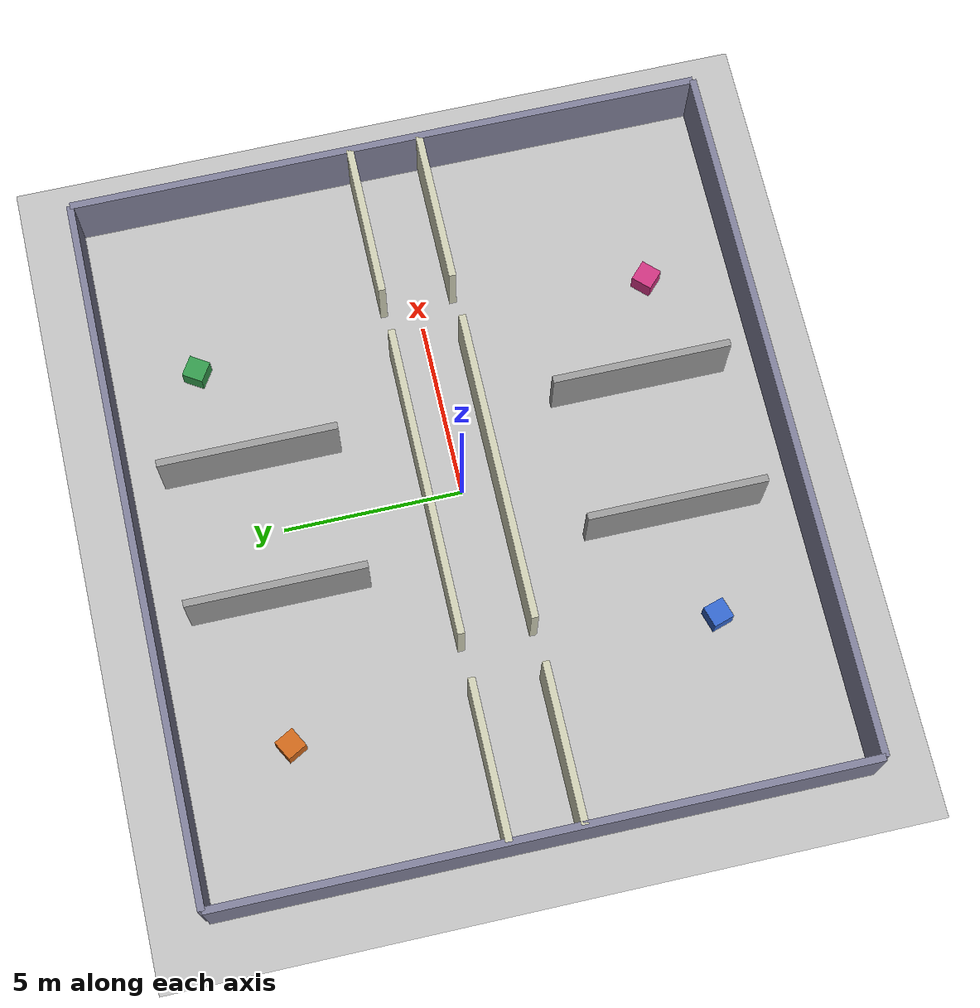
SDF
<?xml version="1.0" ?>
<sdf version='1.8'>
  <world name='corridor'>

    <physics name='4ms' type='ignored'>
      <max_step_size>0.004</max_step_size>
      <real_time_factor>1</real_time_factor>
    </physics>

    <plugin filename="ignition-gazebo-physics-system"
            name="ignition::gazebo::systems::Physics"/>
    <plugin filename="ignition-gazebo-user-commands-system"
            name="ignition::gazebo::systems::UserCommands"/>
    <plugin filename="ignition-gazebo-scene-broadcaster-system"
            name="ignition::gazebo::systems::SceneBroadcaster"/>
    <plugin filename="ignition-gazebo-sensors-system"
            name="ignition::gazebo::systems::Sensors">
      <render_engine>ogre2</render_engine>
    </plugin>
    <plugin filename="ignition-gazebo-contact-system"
            name="ignition::gazebo::systems::Contact"/>
    <plugin filename="ignition-gazebo-imu-system"
            name="ignition::gazebo::systems::Imu"/>

    <light name='sun' type='directional'>
      <pose>0 0 15 0 0 0</pose>
      <cast_shadows>true</cast_shadows>
      <intensity>1</intensity>
      <direction>-0.4 0.2 -0.9</direction>
      <diffuse>0.9 0.9 0.9 1</diffuse>
      <specular>0.2 0.2 0.2 1</specular>
    </light>

    <!-- Ground -->
    <model name='ground_plane'>
      <static>true</static>
      <link name='link'>
        <collision name='c'><geometry><plane><normal>0 0 1</normal><size>100 100</size></plane></geometry></collision>
        <visual name='v'><geometry><plane><normal>0 0 1</normal><size>100 100</size></plane></geometry>
          <material><ambient>0.75 0.75 0.75 1</ambient><diffuse>0.75 0.75 0.75 1</diffuse></material>
        </visual>
      </link>
    </model>

    <!-- Helper macro: each wall segment is a 0.2-thick box -->

    <!-- ── Outer boundary ────────────────────────────────────── -->
    <model name='outer_N'><static>true</static><pose>0 9 1 0 0 0</pose>
      <link name='l'><collision name='c'><geometry><box><size>20 0.2 2</size></box></geometry></collision>
      <visual name='v'><geometry><box><size>20 0.2 2</size></box></geometry>
        <material><ambient>0.5 0.5 0.6 1</ambient><diffuse>0.5 0.5 0.6 1</diffuse></material></visual></link></model>

    <model name='outer_S'><static>true</static><pose>0 -9 1 0 0 0</pose>
      <link name='l'><collision name='c'><geometry><box><size>20 0.2 2</size></box></geometry></collision>
      <visual name='v'><geometry><box><size>20 0.2 2</size></box></geometry>
        <material><ambient>0.5 0.5 0.6 1</ambient><diffuse>0.5 0.5 0.6 1</diffuse></material></visual></link></model>

    <model name='outer_E'><static>true</static><pose>10 0 1 0 0 0</pose>
      <link name='l'><collision name='c'><geometry><box><size>0.2 18 2</size></box></geometry></collision>
      <visual name='v'><geometry><box><size>0.2 18 2</size></box></geometry>
        <material><ambient>0.5 0.5 0.6 1</ambient><diffuse>0.5 0.5 0.6 1</diffuse></material></visual></link></model>

    <model name='outer_W'><static>true</static><pose>-10 0 1 0 0 0</pose>
      <link name='l'><collision name='c'><geometry><box><size>0.2 18 2</size></box></geometry></collision>
      <visual name='v'><geometry><box><size>0.2 18 2</size></box></geometry>
        <material><ambient>0.5 0.5 0.6 1</ambient><diffuse>0.5 0.5 0.6 1</diffuse></material></visual></link></model>

    <model name='corr_N_1'><static>true</static><pose>-7.8 1 1 0 0 0</pose>
      <link name='l'><collision name='c'><geometry><box><size>4.4 0.2 2</size></box></geometry></collision>
      <visual name='v'><geometry><box><size>4.4 0.2 2</size></box></geometry>
        <material><ambient>0.8 0.8 0.7 1</ambient><diffuse>0.8 0.8 0.7 1</diffuse></material></visual></link></model>
    <model name='corr_N_2'><static>true</static><pose>0 1 1 0 0 0</pose>
      <link name='l'><collision name='c'><geometry><box><size>8.8 0.2 2</size></box></geometry></collision>
      <visual name='v'><geometry><box><size>8.8 0.2 2</size></box></geometry>
        <material><ambient>0.8 0.8 0.7 1</ambient><diffuse>0.8 0.8 0.7 1</diffuse></material></visual></link></model>
    <model name='corr_N_3'><static>true</static><pose>7.8 1 1 0 0 0</pose>
      <link name='l'><collision name='c'><geometry><box><size>4.4 0.2 2</size></box></geometry></collision>
      <visual name='v'><geometry><box><size>4.4 0.2 2</size></box></geometry>
        <material><ambient>0.8 0.8 0.7 1</ambient><diffuse>0.8 0.8 0.7 1</diffuse></material></visual></link></model>

    <model name='corr_S_1'><static>true</static><pose>-7.8 -1 1 0 0 0</pose>
      <link name='l'><collision name='c'><geometry><box><size>4.4 0.2 2</size></box></geometry></collision>
      <visual name='v'><geometry><box><size>4.4 0.2 2</size></box></geometry>
        <material><ambient>0.8 0.8 0.7 1</ambient><diffuse>0.8 0.8 0.7 1</diffuse></material></visual></link></model>
    <model name='corr_S_2'><static>true</static><pose>0 -1 1 0 0 0</pose>
      <link name='l'><collision name='c'><geometry><box><size>8.8 0.2 2</size></box></geometry></collision>
      <visual name='v'><geometry><box><size>8.8 0.2 2</size></box></geometry>
        <material><ambient>0.8 0.8 0.7 1</ambient><diffuse>0.8 0.8 0.7 1</diffuse></material></visual></link></model>
    <model name='corr_S_3'><static>true</static><pose>7.8 -1 1 0 0 0</pose>
      <link name='l'><collision name='c'><geometry><box><size>4.4 0.2 2</size></box></geometry></collision>
      <visual name='v'><geometry><box><size>4.4 0.2 2</size></box></geometry>
        <material><ambient>0.8 0.8 0.7 1</ambient><diffuse>0.8 0.8 0.7 1</diffuse></material></visual></link></model>

    <!-- ── Room A — top-left (x: -8 to -2, y: 1 to 8) ────────── -->
    <!-- West inner wall with doorway gap at y=5 -->
    <model name='roomA_W1'><static>true</static><pose>-2 5.5 1 0 0 0</pose>
      <link name='l'><collision name='c'><geometry><box><size>0.2 5 2</size></box></geometry></collision>
      <visual name='v'><geometry><box><size>0.2 5 2</size></box></geometry>
        <material><ambient>0.6 0.6 0.6 1</ambient><diffuse>0.6 0.6 0.6 1</diffuse></material></visual></link></model>

    <!-- ── Room B — top-right (x: 2 to 8, y: 1 to 8) ─────────── -->
    <model name='roomB_W1'><static>true</static><pose>2 5.5 1 0 0 0</pose>
      <link name='l'><collision name='c'><geometry><box><size>0.2 5 2</size></box></geometry></collision>
      <visual name='v'><geometry><box><size>0.2 5 2</size></box></geometry>
        <material><ambient>0.6 0.6 0.6 1</ambient><diffuse>0.6 0.6 0.6 1</diffuse></material></visual></link></model>

    <!-- ── Room C — bottom-left (x: -8 to -2, y: -8 to -1) ───── -->
    <model name='roomC_W1'><static>true</static><pose>-2 -5.5 1 0 0 0</pose>
      <link name='l'><collision name='c'><geometry><box><size>0.2 5 2</size></box></geometry></collision>
      <visual name='v'><geometry><box><size>0.2 5 2</size></box></geometry>
        <material><ambient>0.6 0.6 0.6 1</ambient><diffuse>0.6 0.6 0.6 1</diffuse></material></visual></link></model>

    <!-- ── Room D — bottom-right (x: 2 to 8, y: -8 to -1) ────── -->
    <model name='roomD_W1'><static>true</static><pose>2 -5.5 1 0 0 0</pose>
      <link name='l'><collision name='c'><geometry><box><size>0.2 5 2</size></box></geometry></collision>
      <visual name='v'><geometry><box><size>0.2 5 2</size></box></geometry>
        <material><ambient>0.6 0.6 0.6 1</ambient><diffuse>0.6 0.6 0.6 1</diffuse></material></visual></link></model>

    <!-- ── Scatter a few boxes in the rooms ─────────────────────── -->
    <model name='box1'><static>true</static><pose>-6 6 0.3 0 0 0.5</pose>
      <link name='l'><collision name='c'><geometry><box><size>0.6 0.6 0.6</size></box></geometry></collision>
      <visual name='v'><geometry><box><size>0.6 0.6 0.6</size></box></geometry>
        <material><ambient>0.8 0.4 0.1 1</ambient><diffuse>0.8 0.4 0.1 1</diffuse></material></visual></link></model>

    <model name='box2'><static>true</static><pose>5 6.5 0.3 0 0 1.0</pose>
      <link name='l'><collision name='c'><geometry><box><size>0.6 0.6 0.6</size></box></geometry></collision>
      <visual name='v'><geometry><box><size>0.6 0.6 0.6</size></box></geometry>
        <material><ambient>0.2 0.6 0.3 1</ambient><diffuse>0.2 0.6 0.3 1</diffuse></material></visual></link></model>

    <model name='box3'><static>true</static><pose>-5 -6 0.3 0 0 0.3</pose>
      <link name='l'><collision name='c'><geometry><box><size>0.6 0.6 0.6</size></box></geometry></collision>
      <visual name='v'><geometry><box><size>0.6 0.6 0.6</size></box></geometry>
        <material><ambient>0.2 0.4 0.8 1</ambient><diffuse>0.2 0.4 0.8 1</diffuse></material></visual></link></model>

    <model name='box4'><static>true</static><pose>5 -6.5 0.3 0 0 0.8</pose>
      <link name='l'><collision name='c'><geometry><box><size>0.6 0.6 0.6</size></box></geometry></collision>
      <visual name='v'><geometry><box><size>0.6 0.6 0.6</size></box></geometry>
        <material><ambient>0.8 0.2 0.5 1</ambient><diffuse>0.8 0.2 0.5 1</diffuse></material></visual></link></model>

    <model name='world_monitor_cam'>
      <static>true</static>
      <pose>5.5 5.0 3.8 0 0.55 -2.356</pose>
      <link name='link'>
        <sensor name='monitor_camera' type='camera'>
          <always_on>true</always_on>
          <update_rate>10</update_rate>
          <topic>world_monitor/image_raw</topic>
          <camera>
            <horizontal_fov>1.3</horizontal_fov>
            <image><width>960</width><height>540</height><format>R8G8B8</format></image>
            <clip><near>0.05</near><far>25.0</far></clip>
          </camera>
        </sensor>
      </link>
    </model>

  </world>
</sdf>
